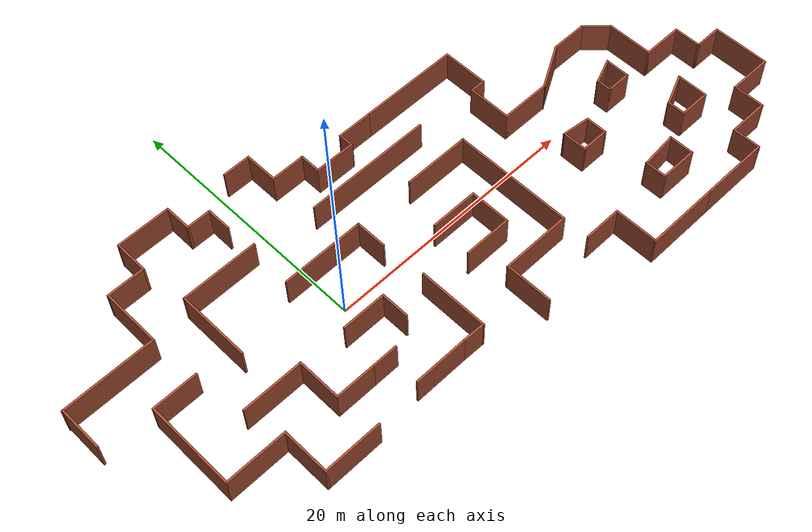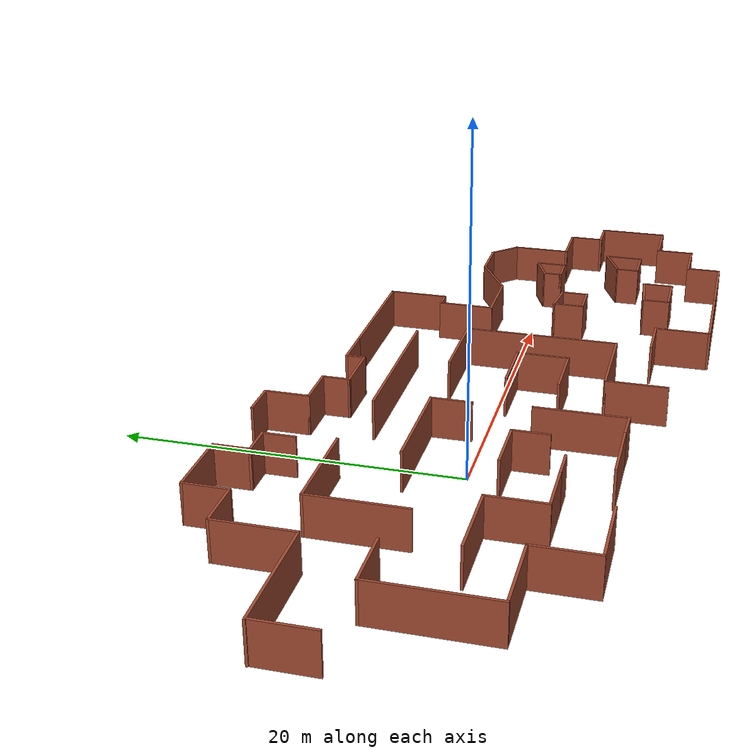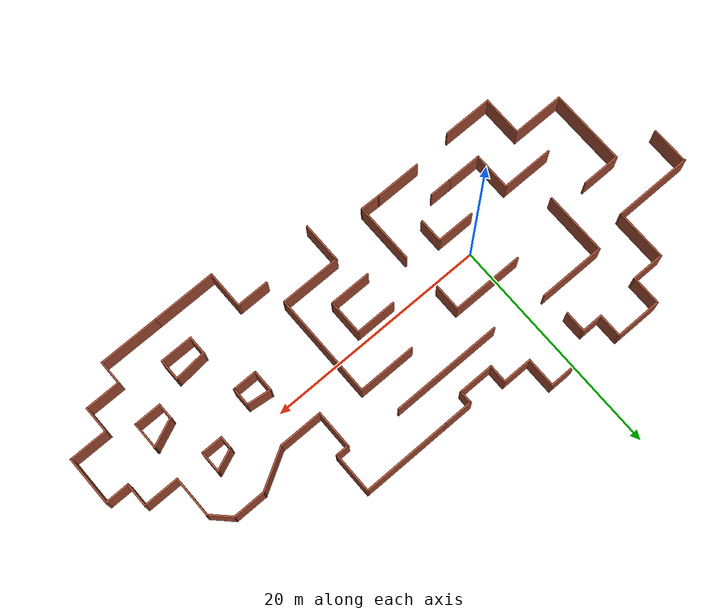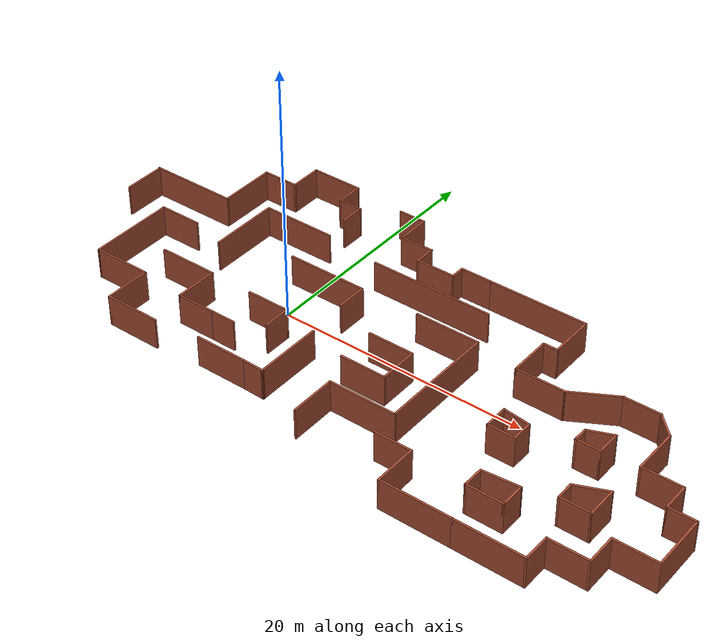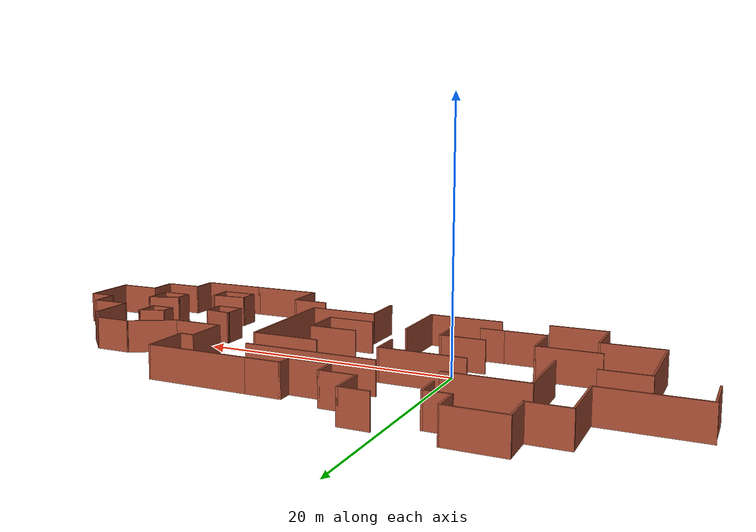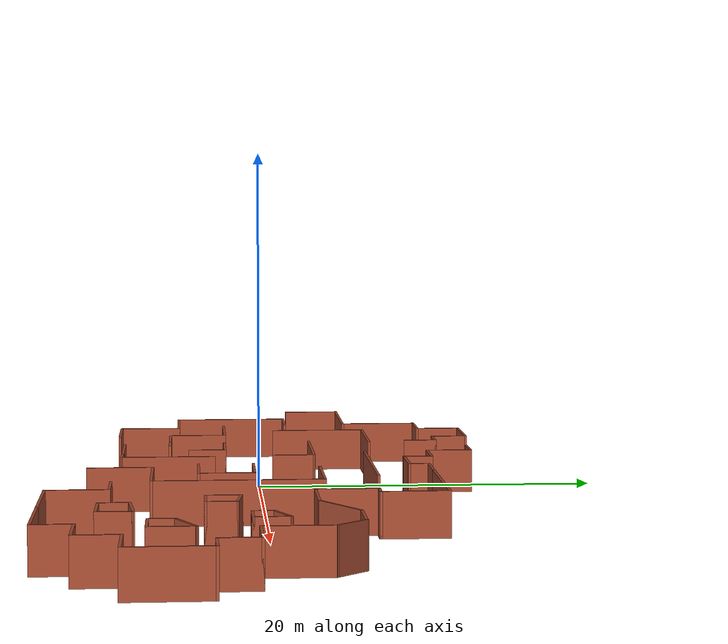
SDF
<?xml version='1.0'?>
<sdf version='1.6'>
  <model name='How_long_have_I_been_here'>
    <pose frame=''>8.36258 0.652337 0 0 -0 0</pose>
    <link name='Wall_0'>
      <collision name='Wall_0_Collision'>
        <geometry>
          <box>
            <size>3.5 0.15 2.5</size>
          </box>
        </geometry>
        <pose frame=''>0 0 1.25 0 -0 0</pose>
      </collision>
      <visual name='Wall_0_Visual'>
        <pose frame=''>0 0 1.25 0 -0 0</pose>
        <geometry>
          <box>
            <size>3.5 0.15 2.5</size>
          </box>
        </geometry>
        <material>
          <script>
            <uri>file://media/materials/scripts/gazebo.material</uri>
            <name>Gazebo/Bricks</name>
          </script>
          <ambient>1 1 1 1</ambient>
        </material>
        <meta>
          <layer>0</layer>
        </meta>
      </visual>
      <pose frame=''>-8.40758 -2.69234 0 0 -0 0</pose>
    </link>
    <link name='Wall_1'>
      <collision name='Wall_1_Collision'>
        <geometry>
          <box>
            <size>2.25 0.15 2.5</size>
          </box>
        </geometry>
        <pose frame=''>0 0 1.25 0 -0 0</pose>
      </collision>
      <visual name='Wall_1_Visual'>
        <pose frame=''>0 0 1.25 0 -0 0</pose>
        <geometry>
          <box>
            <size>2.25 0.15 2.5</size>
          </box>
        </geometry>
        <material>
          <script>
            <uri>file://media/materials/scripts/gazebo.material</uri>
            <name>Gazebo/Bricks</name>
          </script>
          <ambient>1 1 1 1</ambient>
        </material>
        <meta>
          <layer>0</layer>
        </meta>
      </visual>
      <pose frame=''>-6.73258 -3.74234 0 0 -0 -1.5708</pose>
    </link>
    <link name='Wall_10'>
      <collision name='Wall_10_Collision'>
        <geometry>
          <box>
            <size>5.75 0.15 2.5</size>
          </box>
        </geometry>
        <pose frame=''>0 0 1.25 0 -0 0</pose>
      </collision>
      <visual name='Wall_10_Visual'>
        <pose frame=''>0 0 1.25 0 -0 0</pose>
        <geometry>
          <box>
            <size>5.75 0.15 2.5</size>
          </box>
        </geometry>
        <material>
          <script>
            <uri>file://media/materials/scripts/gazebo.material</uri>
            <name>Gazebo/Bricks</name>
          </script>
          <ambient>1 1 1 1</ambient>
        </material>
        <meta>
          <layer>0</layer>
        </meta>
      </visual>
      <pose frame=''>-15.8552 3.3166 0 0 -0 -1.5708</pose>
    </link>
    <link name='Wall_12'>
      <collision name='Wall_12_Collision'>
        <geometry>
          <box>
            <size>10 0.15 2.5</size>
          </box>
        </geometry>
        <pose frame=''>0 0 1.25 0 -0 0</pose>
      </collision>
      <visual name='Wall_12_Visual'>
        <pose frame=''>0 0 1.25 0 -0 0</pose>
        <geometry>
          <box>
            <size>10 0.15 2.5</size>
          </box>
        </geometry>
        <material>
          <script>
            <uri>file://media/materials/scripts/gazebo.material</uri>
            <name>Gazebo/Bricks</name>
          </script>
          <ambient>1 1 1 1</ambient>
        </material>
        <meta>
          <layer>0</layer>
        </meta>
      </visual>
      <pose frame=''>-0.28468 5.49827 0 0 -0 0</pose>
    </link>
    <link name='Wall_15'>
      <collision name='Wall_15_Collision'>
        <geometry>
          <box>
            <size>4.75 0.15 2.5</size>
          </box>
        </geometry>
        <pose frame=''>0 0 1.25 0 -0 0</pose>
      </collision>
      <visual name='Wall_15_Visual'>
        <pose frame=''>0 0 1.25 0 -0 0</pose>
        <geometry>
          <box>
            <size>4.75 0.15 2.5</size>
          </box>
        </geometry>
        <material>
          <script>
            <uri>file://media/materials/scripts/gazebo.material</uri>
            <name>Gazebo/Bricks</name>
          </script>
          <ambient>1 1 1 1</ambient>
        </material>
        <meta>
          <layer>0</layer>
        </meta>
      </visual>
      <pose frame=''>-16.0459 -2.61972 0 0 -0 0</pose>
    </link>
    <link name='Wall_16'>
      <collision name='Wall_16_Collision'>
        <geometry>
          <box>
            <size>3.5 0.15 2.5</size>
          </box>
        </geometry>
        <pose frame=''>0 0 1.25 0 -0 0</pose>
      </collision>
      <visual name='Wall_16_Visual'>
        <pose frame=''>0 0 1.25 0 -0 0</pose>
        <geometry>
          <box>
            <size>3.5 0.15 2.5</size>
          </box>
        </geometry>
        <material>
          <script>
            <uri>file://media/materials/scripts/gazebo.material</uri>
            <name>Gazebo/Bricks</name>
          </script>
          <ambient>1 1 1 1</ambient>
        </material>
        <meta>
          <layer>0</layer>
        </meta>
      </visual>
      <pose frame=''>-13.7459 -4.29472 0 0 -0 -1.5708</pose>
    </link>
    <link name='Wall_17'>
      <collision name='Wall_17_Collision'>
        <geometry>
          <box>
            <size>3.25 0.15 2.5</size>
          </box>
        </geometry>
        <pose frame=''>0 0 1.25 0 -0 0</pose>
      </collision>
      <visual name='Wall_17_Visual'>
        <pose frame=''>0 0 1.25 0 -0 0</pose>
        <geometry>
          <box>
            <size>3.25 0.15 2.5</size>
          </box>
        </geometry>
        <material>
          <script>
            <uri>file://media/materials/scripts/gazebo.material</uri>
            <name>Gazebo/Bricks</name>
          </script>
          <ambient>1 1 1 1</ambient>
        </material>
        <meta>
          <layer>0</layer>
        </meta>
      </visual>
      <pose frame=''>-12.1959 -5.96972 0 0 -0 0</pose>
    </link>
    <link name='Wall_18'>
      <collision name='Wall_18_Collision'>
        <geometry>
          <box>
            <size>2 0.15 2.5</size>
          </box>
        </geometry>
        <pose frame=''>0 0 1.25 0 -0 0</pose>
      </collision>
      <visual name='Wall_18_Visual'>
        <pose frame=''>0 0 1.25 0 -0 0</pose>
        <geometry>
          <box>
            <size>2 0.15 2.5</size>
          </box>
        </geometry>
        <material>
          <script>
            <uri>file://media/materials/scripts/gazebo.material</uri>
            <name>Gazebo/Bricks</name>
          </script>
          <ambient>1 1 1 1</ambient>
        </material>
        <meta>
          <layer>0</layer>
        </meta>
      </visual>
      <pose frame=''>-9.72091 -5.96972 0 0 -0 0</pose>
    </link>
    <link name='Wall_20'>
      <collision name='Wall_20_Collision'>
        <geometry>
          <box>
            <size>4.25 0.15 2.5</size>
          </box>
        </geometry>
        <pose frame=''>0 0 1.25 0 -0 0</pose>
      </collision>
      <visual name='Wall_20_Visual'>
        <pose frame=''>0 0 1.25 0 -0 0</pose>
        <geometry>
          <box>
            <size>4.25 0.15 2.5</size>
          </box>
        </geometry>
        <material>
          <script>
            <uri>file://media/materials/scripts/gazebo.material</uri>
            <name>Gazebo/Bricks</name>
          </script>
          <ambient>1 1 1 1</ambient>
        </material>
        <meta>
          <layer>0</layer>
        </meta>
      </visual>
      <pose frame=''>-7.48592 -8.67658 0 0 -0 0</pose>
    </link>
    <link name='Wall_22'>
      <collision name='Wall_22_Collision'>
        <geometry>
          <box>
            <size>5.5 0.15 2.5</size>
          </box>
        </geometry>
        <pose frame=''>0 0 1.25 0 -0 0</pose>
      </collision>
      <visual name='Wall_22_Visual'>
        <pose frame=''>0 0 1.25 0 -0 0</pose>
        <geometry>
          <box>
            <size>5.5 0.15 2.5</size>
          </box>
        </geometry>
        <material>
          <script>
            <uri>file://media/materials/scripts/gazebo.material</uri>
            <name>Gazebo/Bricks</name>
          </script>
          <ambient>1 1 1 1</ambient>
        </material>
        <meta>
          <layer>0</layer>
        </meta>
      </visual>
      <pose frame=''>-3.78353 -6.04521 0 0 -0 -1.5708</pose>
    </link>
    <link name='Wall_23'>
      <collision name='Wall_23_Collision'>
        <geometry>
          <box>
            <size>1.80296 0.15 2.5</size>
          </box>
        </geometry>
        <pose frame=''>0 0 1.25 0 -0 0</pose>
      </collision>
      <visual name='Wall_23_Visual'>
        <pose frame=''>0 0 1.25 0 -0 0</pose>
        <geometry>
          <box>
            <size>1.80296 0.15 2.5</size>
          </box>
        </geometry>
        <material>
          <script>
            <uri>file://media/materials/scripts/gazebo.material</uri>
            <name>Gazebo/Bricks</name>
          </script>
          <ambient>1 1 1 1</ambient>
        </material>
        <meta>
          <layer>0</layer>
        </meta>
      </visual>
      <pose frame=''>-4.60973 -8.6984 0 0 -0 3.1152</pose>
    </link>
    <link name='Wall_26'>
      <collision name='Wall_26_Collision'>
        <geometry>
          <box>
            <size>3.75 0.15 2.5</size>
          </box>
        </geometry>
        <pose frame=''>0 0 1.25 0 -0 0</pose>
      </collision>
      <visual name='Wall_26_Visual'>
        <pose frame=''>0 0 1.25 0 -0 0</pose>
        <geometry>
          <box>
            <size>3.75 0.15 2.5</size>
          </box>
        </geometry>
        <material>
          <script>
            <uri>file://media/materials/scripts/gazebo.material</uri>
            <name>Gazebo/Bricks</name>
          </script>
          <ambient>1 1 1 1</ambient>
        </material>
        <meta>
          <layer>0</layer>
        </meta>
      </visual>
      <pose frame=''>1.25475 -1.19593 0 0 -0 0</pose>
    </link>
    <link name='Wall_27'>
      <collision name='Wall_27_Collision'>
        <geometry>
          <box>
            <size>3.25 0.15 2.5</size>
          </box>
        </geometry>
        <pose frame=''>0 0 1.25 0 -0 0</pose>
      </collision>
      <visual name='Wall_27_Visual'>
        <pose frame=''>0 0 1.25 0 -0 0</pose>
        <geometry>
          <box>
            <size>3.25 0.15 2.5</size>
          </box>
        </geometry>
        <material>
          <script>
            <uri>file://media/materials/scripts/gazebo.material</uri>
            <name>Gazebo/Bricks</name>
          </script>
          <ambient>1 1 1 1</ambient>
        </material>
        <meta>
          <layer>0</layer>
        </meta>
      </visual>
      <pose frame=''>3.05475 -2.74593 0 0 -0 -1.5708</pose>
    </link>
    <link name='Wall_28'>
      <collision name='Wall_28_Collision'>
        <geometry>
          <box>
            <size>3.75 0.15 2.5</size>
          </box>
        </geometry>
        <pose frame=''>0 0 1.25 0 -0 0</pose>
      </collision>
      <visual name='Wall_28_Visual'>
        <pose frame=''>0 0 1.25 0 -0 0</pose>
        <geometry>
          <box>
            <size>3.75 0.15 2.5</size>
          </box>
        </geometry>
        <material>
          <script>
            <uri>file://media/materials/scripts/gazebo.material</uri>
            <name>Gazebo/Bricks</name>
          </script>
          <ambient>1 1 1 1</ambient>
        </material>
        <meta>
          <layer>0</layer>
        </meta>
      </visual>
      <pose frame=''>1.25475 -4.29593 0 0 -0 3.14159</pose>
    </link>
    <link name='Wall_30'>
      <collision name='Wall_30_Collision'>
        <geometry>
          <box>
            <size>5.25 0.15 2.5</size>
          </box>
        </geometry>
        <pose frame=''>0 0 1.25 0 -0 0</pose>
      </collision>
      <visual name='Wall_30_Visual'>
        <pose frame=''>0 0 1.25 0 -0 0</pose>
        <geometry>
          <box>
            <size>5.25 0.15 2.5</size>
          </box>
        </geometry>
        <material>
          <script>
            <uri>file://media/materials/scripts/gazebo.material</uri>
            <name>Gazebo/Bricks</name>
          </script>
          <ambient>1 1 1 1</ambient>
        </material>
        <meta>
          <layer>0</layer>
        </meta>
      </visual>
      <pose frame=''>3.30007 2.50496 0 0 -0 0</pose>
    </link>
    <link name='Wall_31'>
      <collision name='Wall_31_Collision'>
        <geometry>
          <box>
            <size>9.5 0.15 2.5</size>
          </box>
        </geometry>
        <pose frame=''>0 0 1.25 0 -0 0</pose>
      </collision>
      <visual name='Wall_31_Visual'>
        <pose frame=''>0 0 1.25 0 -0 0</pose>
        <geometry>
          <box>
            <size>9.5 0.15 2.5</size>
          </box>
        </geometry>
        <material>
          <script>
            <uri>file://media/materials/scripts/gazebo.material</uri>
            <name>Gazebo/Bricks</name>
          </script>
          <ambient>1 1 1 1</ambient>
        </material>
        <meta>
          <layer>0</layer>
        </meta>
      </visual>
      <pose frame=''>5.85007 -2.17004 0 0 -0 -1.5708</pose>
    </link>
    <link name='Wall_32'>
      <collision name='Wall_32_Collision'>
        <geometry>
          <box>
            <size>5.5 0.15 2.5</size>
          </box>
        </geometry>
        <pose frame=''>0 0 1.25 0 -0 0</pose>
      </collision>
      <visual name='Wall_32_Visual'>
        <pose frame=''>0 0 1.25 0 -0 0</pose>
        <geometry>
          <box>
            <size>5.5 0.15 2.5</size>
          </box>
        </geometry>
        <material>
          <script>
            <uri>file://media/materials/scripts/gazebo.material</uri>
            <name>Gazebo/Bricks</name>
          </script>
          <ambient>1 1 1 1</ambient>
        </material>
        <meta>
          <layer>0</layer>
        </meta>
      </visual>
      <pose frame=''>3.17507 -6.84504 0 0 -0 3.14159</pose>
    </link>
    <link name='Wall_33'>
      <collision name='Wall_33_Collision'>
        <geometry>
          <box>
            <size>3.75 0.15 2.5</size>
          </box>
        </geometry>
        <pose frame=''>0 0 1.25 0 -0 0</pose>
      </collision>
      <visual name='Wall_33_Visual'>
        <pose frame=''>0 0 1.25 0 -0 0</pose>
        <geometry>
          <box>
            <size>3.75 0.15 2.5</size>
          </box>
        </geometry>
        <material>
          <script>
            <uri>file://media/materials/scripts/gazebo.material</uri>
            <name>Gazebo/Bricks</name>
          </script>
          <ambient>1 1 1 1</ambient>
        </material>
        <meta>
          <layer>0</layer>
        </meta>
      </visual>
      <pose frame=''>0.500066 -8.64504 0 0 -0 -1.5708</pose>
    </link>
    <link name='Wall_35'>
      <collision name='Wall_35_Collision'>
        <geometry>
          <box>
            <size>3.5 0.15 2.5</size>
          </box>
        </geometry>
        <pose frame=''>0 0 1.25 0 -0 0</pose>
      </collision>
      <visual name='Wall_35_Visual'>
        <pose frame=''>0 0 1.25 0 -0 0</pose>
        <geometry>
          <box>
            <size>3.5 0.15 2.5</size>
          </box>
        </geometry>
        <material>
          <script>
            <uri>file://media/materials/scripts/gazebo.material</uri>
            <name>Gazebo/Bricks</name>
          </script>
          <ambient>1 1 1 1</ambient>
        </material>
        <meta>
          <layer>0</layer>
        </meta>
      </visual>
      <pose frame=''>-20.4934 1.34843 0 0 -0 3.14159</pose>
    </link>
    <link name='Wall_36'>
      <collision name='Wall_36_Collision'>
        <geometry>
          <box>
            <size>7 0.15 2.5</size>
          </box>
        </geometry>
        <pose frame=''>0 0 1.25 0 -0 0</pose>
      </collision>
      <visual name='Wall_36_Visual'>
        <pose frame=''>0 0 1.25 0 -0 0</pose>
        <geometry>
          <box>
            <size>7 0.15 2.5</size>
          </box>
        </geometry>
        <material>
          <script>
            <uri>file://media/materials/scripts/gazebo.material</uri>
            <name>Gazebo/Bricks</name>
          </script>
          <ambient>1 1 1 1</ambient>
        </material>
        <meta>
          <layer>0</layer>
        </meta>
      </visual>
      <pose frame=''>-22.1684 -2.07657 0 0 -0 -1.5708</pose>
    </link>
    <link name='Wall_37'>
      <collision name='Wall_37_Collision'>
        <geometry>
          <box>
            <size>4.75 0.15 2.5</size>
          </box>
        </geometry>
        <pose frame=''>0 0 1.25 0 -0 0</pose>
      </collision>
      <visual name='Wall_37_Visual'>
        <pose frame=''>0 0 1.25 0 -0 0</pose>
        <geometry>
          <box>
            <size>4.75 0.15 2.5</size>
          </box>
        </geometry>
        <material>
          <script>
            <uri>file://media/materials/scripts/gazebo.material</uri>
            <name>Gazebo/Bricks</name>
          </script>
          <ambient>1 1 1 1</ambient>
        </material>
        <meta>
          <layer>0</layer>
        </meta>
      </visual>
      <pose frame=''>-19.8684 -5.50157 0 0 -0 0</pose>
    </link>
    <link name='Wall_38'>
      <collision name='Wall_38_Collision'>
        <geometry>
          <box>
            <size>3.75 0.15 2.5</size>
          </box>
        </geometry>
        <pose frame=''>0 0 1.25 0 -0 0</pose>
      </collision>
      <visual name='Wall_38_Visual'>
        <pose frame=''>0 0 1.25 0 -0 0</pose>
        <geometry>
          <box>
            <size>3.75 0.15 2.5</size>
          </box>
        </geometry>
        <material>
          <script>
            <uri>file://media/materials/scripts/gazebo.material</uri>
            <name>Gazebo/Bricks</name>
          </script>
          <ambient>1 1 1 1</ambient>
        </material>
        <meta>
          <layer>0</layer>
        </meta>
      </visual>
      <pose frame=''>-17.5684 -7.30157 0 0 -0 -1.5708</pose>
    </link>
    <link name='Wall_39'>
      <collision name='Wall_39_Collision'>
        <geometry>
          <box>
            <size>4.5 0.15 2.5</size>
          </box>
        </geometry>
        <pose frame=''>0 0 1.25 0 -0 0</pose>
      </collision>
      <visual name='Wall_39_Visual'>
        <pose frame=''>0 0 1.25 0 -0 0</pose>
        <geometry>
          <box>
            <size>4.5 0.15 2.5</size>
          </box>
        </geometry>
        <material>
          <script>
            <uri>file://media/materials/scripts/gazebo.material</uri>
            <name>Gazebo/Bricks</name>
          </script>
          <ambient>1 1 1 1</ambient>
        </material>
        <meta>
          <layer>0</layer>
        </meta>
      </visual>
      <pose frame=''>-15.3934 -9.10157 0 0 -0 0</pose>
    </link>
    <link name='Wall_41'>
      <collision name='Wall_41_Collision'>
        <geometry>
          <box>
            <size>2 0.15 2.5</size>
          </box>
        </geometry>
        <pose frame=''>0 0 1.25 0 -0 0</pose>
      </collision>
      <visual name='Wall_41_Visual'>
        <pose frame=''>0 0 1.25 0 -0 0</pose>
        <geometry>
          <box>
            <size>2 0.15 2.5</size>
          </box>
        </geometry>
        <material>
          <script>
            <uri>file://media/materials/scripts/gazebo.material</uri>
            <name>Gazebo/Bricks</name>
          </script>
          <ambient>1 1 1 1</ambient>
        </material>
        <meta>
          <layer>0</layer>
        </meta>
      </visual>
      <pose frame=''>-10.3555 9.30042 0 0 -0 1.5708</pose>
    </link>
    <link name='Wall_42'>
      <collision name='Wall_42_Collision'>
        <geometry>
          <box>
            <size>2 0.15 2.5</size>
          </box>
        </geometry>
        <pose frame=''>0 0 1.25 0 -0 0</pose>
      </collision>
      <visual name='Wall_42_Visual'>
        <pose frame=''>0 0 1.25 0 -0 0</pose>
        <geometry>
          <box>
            <size>2 0.15 2.5</size>
          </box>
        </geometry>
        <material>
          <script>
            <uri>file://media/materials/scripts/gazebo.material</uri>
            <name>Gazebo/Bricks</name>
          </script>
          <ambient>1 1 1 1</ambient>
        </material>
        <meta>
          <layer>0</layer>
        </meta>
      </visual>
      <pose frame=''>-11.2805 10.2254 0 0 -0 3.14159</pose>
    </link>
    <link name='Wall_43'>
      <collision name='Wall_43_Collision'>
        <geometry>
          <box>
            <size>2.25 0.15 2.5</size>
          </box>
        </geometry>
        <pose frame=''>0 0 1.25 0 -0 0</pose>
      </collision>
      <visual name='Wall_43_Visual'>
        <pose frame=''>0 0 1.25 0 -0 0</pose>
        <geometry>
          <box>
            <size>2.25 0.15 2.5</size>
          </box>
        </geometry>
        <material>
          <script>
            <uri>file://media/materials/scripts/gazebo.material</uri>
            <name>Gazebo/Bricks</name>
          </script>
          <ambient>1 1 1 1</ambient>
        </material>
        <meta>
          <layer>0</layer>
        </meta>
      </visual>
      <pose frame=''>-12.2055 11.2754 0 0 -0 1.5708</pose>
    </link>
    <link name='Wall_44'>
      <collision name='Wall_44_Collision'>
        <geometry>
          <box>
            <size>4.25 0.15 2.5</size>
          </box>
        </geometry>
        <pose frame=''>0 0 1.25 0 -0 0</pose>
      </collision>
      <visual name='Wall_44_Visual'>
        <pose frame=''>0 0 1.25 0 -0 0</pose>
        <geometry>
          <box>
            <size>4.25 0.15 2.5</size>
          </box>
        </geometry>
        <material>
          <script>
            <uri>file://media/materials/scripts/gazebo.material</uri>
            <name>Gazebo/Bricks</name>
          </script>
          <ambient>1 1 1 1</ambient>
        </material>
        <meta>
          <layer>0</layer>
        </meta>
      </visual>
      <pose frame=''>-14.2555 12.3254 0 0 -0 3.14159</pose>
    </link>
    <link name='Wall_45'>
      <collision name='Wall_45_Collision'>
        <geometry>
          <box>
            <size>2.75 0.15 2.5</size>
          </box>
        </geometry>
        <pose frame=''>0 0 1.25 0 -0 0</pose>
      </collision>
      <visual name='Wall_45_Visual'>
        <pose frame=''>0 0 1.25 0 -0 0</pose>
        <geometry>
          <box>
            <size>2.75 0.15 2.5</size>
          </box>
        </geometry>
        <material>
          <script>
            <uri>file://media/materials/scripts/gazebo.material</uri>
            <name>Gazebo/Bricks</name>
          </script>
          <ambient>1 1 1 1</ambient>
        </material>
        <meta>
          <layer>0</layer>
        </meta>
      </visual>
      <pose frame=''>-16.3055 11.0254 0 0 -0 -1.5708</pose>
    </link>
    <link name='Wall_46'>
      <collision name='Wall_46_Collision'>
        <geometry>
          <box>
            <size>3 0.15 2.5</size>
          </box>
        </geometry>
        <pose frame=''>0 0 1.25 0 -0 0</pose>
      </collision>
      <visual name='Wall_46_Visual'>
        <pose frame=''>0 0 1.25 0 -0 0</pose>
        <geometry>
          <box>
            <size>3 0.15 2.5</size>
          </box>
        </geometry>
        <material>
          <script>
            <uri>file://media/materials/scripts/gazebo.material</uri>
            <name>Gazebo/Bricks</name>
          </script>
          <ambient>1 1 1 1</ambient>
        </material>
        <meta>
          <layer>0</layer>
        </meta>
      </visual>
      <pose frame=''>-17.7305 9.72542 0 0 -0 3.14159</pose>
    </link>
    <link name='Wall_47'>
      <collision name='Wall_47_Collision'>
        <geometry>
          <box>
            <size>4.75 0.15 2.5</size>
          </box>
        </geometry>
        <pose frame=''>0 0 1.25 0 -0 0</pose>
      </collision>
      <visual name='Wall_47_Visual'>
        <pose frame=''>0 0 1.25 0 -0 0</pose>
        <geometry>
          <box>
            <size>4.75 0.15 2.5</size>
          </box>
        </geometry>
        <material>
          <script>
            <uri>file://media/materials/scripts/gazebo.material</uri>
            <name>Gazebo/Bricks</name>
          </script>
          <ambient>1 1 1 1</ambient>
        </material>
        <meta>
          <layer>0</layer>
        </meta>
      </visual>
      <pose frame=''>-19.1555 7.42542 0 0 -0 -1.5708</pose>
    </link>
    <link name='Wall_48'>
      <collision name='Wall_48_Collision'>
        <geometry>
          <box>
            <size>7.16521 0.15 2.5</size>
          </box>
        </geometry>
        <pose frame=''>0 0 1.25 0 -0 0</pose>
      </collision>
      <visual name='Wall_48_Visual'>
        <pose frame=''>0 0 1.25 0 -0 0</pose>
        <geometry>
          <box>
            <size>7.16521 0.15 2.5</size>
          </box>
        </geometry>
        <material>
          <script>
            <uri>file://media/materials/scripts/gazebo.material</uri>
            <name>Gazebo/Bricks</name>
          </script>
          <ambient>1 1 1 1</ambient>
        </material>
        <meta>
          <layer>0</layer>
        </meta>
      </visual>
      <pose frame=''>-22.6631 5.12542 0 0 -0 3.14159</pose>
    </link>
    <link name='Wall_49'>
      <collision name='Wall_49_Collision'>
        <geometry>
          <box>
            <size>3.5 0.15 2.5</size>
          </box>
        </geometry>
        <pose frame=''>0 0 1.25 0 -0 0</pose>
      </collision>
      <visual name='Wall_49_Visual'>
        <pose frame=''>0 0 1.25 0 -0 0</pose>
        <geometry>
          <box>
            <size>3.5 0.15 2.5</size>
          </box>
        </geometry>
        <material>
          <script>
            <uri>file://media/materials/scripts/gazebo.material</uri>
            <name>Gazebo/Bricks</name>
          </script>
          <ambient>1 1 1 1</ambient>
        </material>
        <meta>
          <layer>0</layer>
        </meta>
      </visual>
      <pose frame=''>-26.1175 3.45042 0 0 -0 -1.5708</pose>
    </link>
    <link name='Wall_51'>
      <collision name='Wall_51_Collision'>
        <geometry>
          <box>
            <size>2.25 0.15 2.5</size>
          </box>
        </geometry>
        <pose frame=''>0 0 1.25 0 -0 0</pose>
      </collision>
      <visual name='Wall_51_Visual'>
        <pose frame=''>0 0 1.25 0 -0 0</pose>
        <geometry>
          <box>
            <size>2.25 0.15 2.5</size>
          </box>
        </geometry>
        <material>
          <script>
            <uri>file://media/materials/scripts/gazebo.material</uri>
            <name>Gazebo/Bricks</name>
          </script>
          <ambient>1 1 1 1</ambient>
        </material>
        <meta>
          <layer>0</layer>
        </meta>
      </visual>
      <pose frame=''>-6.62692 11.8209 0 0 -0 0</pose>
    </link>
    <link name='Wall_52'>
      <collision name='Wall_52_Collision'>
        <geometry>
          <box>
            <size>2.75 0.15 2.5</size>
          </box>
        </geometry>
        <pose frame=''>0 0 1.25 0 -0 0</pose>
      </collision>
      <visual name='Wall_52_Visual'>
        <pose frame=''>0 0 1.25 0 -0 0</pose>
        <geometry>
          <box>
            <size>2.75 0.15 2.5</size>
          </box>
        </geometry>
        <material>
          <script>
            <uri>file://media/materials/scripts/gazebo.material</uri>
            <name>Gazebo/Bricks</name>
          </script>
          <ambient>1 1 1 1</ambient>
        </material>
        <meta>
          <layer>0</layer>
        </meta>
      </visual>
      <pose frame=''>-5.57692 10.5209 0 0 -0 -1.5708</pose>
    </link>
    <link name='Wall_53'>
      <collision name='Wall_53_Collision'>
        <geometry>
          <box>
            <size>2.75 0.15 2.5</size>
          </box>
        </geometry>
        <pose frame=''>0 0 1.25 0 -0 0</pose>
      </collision>
      <visual name='Wall_53_Visual'>
        <pose frame=''>0 0 1.25 0 -0 0</pose>
        <geometry>
          <box>
            <size>2.75 0.15 2.5</size>
          </box>
        </geometry>
        <material>
          <script>
            <uri>file://media/materials/scripts/gazebo.material</uri>
            <name>Gazebo/Bricks</name>
          </script>
          <ambient>1 1 1 1</ambient>
        </material>
        <meta>
          <layer>0</layer>
        </meta>
      </visual>
      <pose frame=''>-4.27692 9.22086 0 0 -0 0</pose>
    </link>
    <link name='Wall_54'>
      <collision name='Wall_54_Collision'>
        <geometry>
          <box>
            <size>1.75 0.15 2.5</size>
          </box>
        </geometry>
        <pose frame=''>0 0 1.25 0 -0 0</pose>
      </collision>
      <visual name='Wall_54_Visual'>
        <pose frame=''>0 0 1.25 0 -0 0</pose>
        <geometry>
          <box>
            <size>1.75 0.15 2.5</size>
          </box>
        </geometry>
        <material>
          <script>
            <uri>file://media/materials/scripts/gazebo.material</uri>
            <name>Gazebo/Bricks</name>
          </script>
          <ambient>1 1 1 1</ambient>
        </material>
        <meta>
          <layer>0</layer>
        </meta>
      </visual>
      <pose frame=''>-2.97692 8.42086 0 0 -0 -1.5708</pose>
    </link>
    <link name='Wall_55'>
      <collision name='Wall_55_Collision'>
        <geometry>
          <box>
            <size>3.25 0.15 2.5</size>
          </box>
        </geometry>
        <pose frame=''>0 0 1.25 0 -0 0</pose>
      </collision>
      <visual name='Wall_55_Visual'>
        <pose frame=''>0 0 1.25 0 -0 0</pose>
        <geometry>
          <box>
            <size>3.25 0.15 2.5</size>
          </box>
        </geometry>
        <material>
          <script>
            <uri>file://media/materials/scripts/gazebo.material</uri>
            <name>Gazebo/Bricks</name>
          </script>
          <ambient>1 1 1 1</ambient>
        </material>
        <meta>
          <layer>0</layer>
        </meta>
      </visual>
      <pose frame=''>-1.42692 7.62086 0 0 -0 0</pose>
    </link>
    <link name='Wall_56'>
      <collision name='Wall_56_Collision'>
        <geometry>
          <box>
            <size>1.25 0.15 2.5</size>
          </box>
        </geometry>
        <pose frame=''>0 0 1.25 0 -0 0</pose>
      </collision>
      <visual name='Wall_56_Visual'>
        <pose frame=''>0 0 1.25 0 -0 0</pose>
        <geometry>
          <box>
            <size>1.25 0.15 2.5</size>
          </box>
        </geometry>
        <material>
          <script>
            <uri>file://media/materials/scripts/gazebo.material</uri>
            <name>Gazebo/Bricks</name>
          </script>
          <ambient>1 1 1 1</ambient>
        </material>
        <meta>
          <layer>0</layer>
        </meta>
      </visual>
      <pose frame=''>0.12308 8.17086 0 0 -0 1.5708</pose>
    </link>
    <link name='Wall_57'>
      <collision name='Wall_57_Collision'>
        <geometry>
          <box>
            <size>2.75 0.15 2.5</size>
          </box>
        </geometry>
        <pose frame=''>0 0 1.25 0 -0 0</pose>
      </collision>
      <visual name='Wall_57_Visual'>
        <pose frame=''>0 0 1.25 0 -0 0</pose>
        <geometry>
          <box>
            <size>2.75 0.15 2.5</size>
          </box>
        </geometry>
        <material>
          <script>
            <uri>file://media/materials/scripts/gazebo.material</uri>
            <name>Gazebo/Bricks</name>
          </script>
          <ambient>1 1 1 1</ambient>
        </material>
        <meta>
          <layer>0</layer>
        </meta>
      </visual>
      <pose frame=''>1.42308 8.72086 0 0 -0 0</pose>
    </link>
    <link name='Wall_58'>
      <collision name='Wall_58_Collision'>
        <geometry>
          <box>
            <size>8 0.15 2.5</size>
          </box>
        </geometry>
        <pose frame=''>0 0 1.25 0 -0 0</pose>
      </collision>
      <visual name='Wall_58_Visual'>
        <pose frame=''>0 0 1.25 0 -0 0</pose>
        <geometry>
          <box>
            <size>8 0.15 2.5</size>
          </box>
        </geometry>
        <material>
          <script>
            <uri>file://media/materials/scripts/gazebo.material</uri>
            <name>Gazebo/Bricks</name>
          </script>
          <ambient>1 1 1 1</ambient>
        </material>
        <meta>
          <layer>0</layer>
        </meta>
      </visual>
      <pose frame=''>6.64808 8.72086 0 0 -0 0</pose>
    </link>
    <link name='Wall_59'>
      <collision name='Wall_59_Collision'>
        <geometry>
          <box>
            <size>3.75 0.15 2.5</size>
          </box>
        </geometry>
        <pose frame=''>0 0 1.25 0 -0 0</pose>
      </collision>
      <visual name='Wall_59_Visual'>
        <pose frame=''>0 0 1.25 0 -0 0</pose>
        <geometry>
          <box>
            <size>3.75 0.15 2.5</size>
          </box>
        </geometry>
        <material>
          <script>
            <uri>file://media/materials/scripts/gazebo.material</uri>
            <name>Gazebo/Bricks</name>
          </script>
          <ambient>1 1 1 1</ambient>
        </material>
        <meta>
          <layer>0</layer>
        </meta>
      </visual>
      <pose frame=''>10.5731 6.92086 0 0 -0 -1.5708</pose>
    </link>
    <link name='Wall_6'>
      <collision name='Wall_6_Collision'>
        <geometry>
          <box>
            <size>6.5 0.15 2.5</size>
          </box>
        </geometry>
        <pose frame=''>0 0 1.25 0 -0 0</pose>
      </collision>
      <visual name='Wall_6_Visual'>
        <pose frame=''>0 0 1.25 0 -0 0</pose>
        <geometry>
          <box>
            <size>6.5 0.15 2.5</size>
          </box>
        </geometry>
        <material>
          <script>
            <uri>file://media/materials/scripts/gazebo.material</uri>
            <name>Gazebo/Bricks</name>
          </script>
          <ambient>1 1 1 1</ambient>
        </material>
        <meta>
          <layer>0</layer>
        </meta>
      </visual>
      <pose frame=''>-7.24896 2.44491 0 0 -0 0</pose>
    </link>
    <link name='Wall_60'>
      <collision name='Wall_60_Collision'>
        <geometry>
          <box>
            <size>1.25 0.15 2.5</size>
          </box>
        </geometry>
        <pose frame=''>0 0 1.25 0 -0 0</pose>
      </collision>
      <visual name='Wall_60_Visual'>
        <pose frame=''>0 0 1.25 0 -0 0</pose>
        <geometry>
          <box>
            <size>1.25 0.15 2.5</size>
          </box>
        </geometry>
        <material>
          <script>
            <uri>file://media/materials/scripts/gazebo.material</uri>
            <name>Gazebo/Bricks</name>
          </script>
          <ambient>1 1 1 1</ambient>
        </material>
        <meta>
          <layer>0</layer>
        </meta>
      </visual>
      <pose frame=''>10.0231 5.12086 0 0 -0 3.14159</pose>
    </link>
    <link name='Wall_61'>
      <collision name='Wall_61_Collision'>
        <geometry>
          <box>
            <size>3.5 0.15 2.5</size>
          </box>
        </geometry>
        <pose frame=''>0 0 1.25 0 -0 0</pose>
      </collision>
      <visual name='Wall_61_Visual'>
        <pose frame=''>0 0 1.25 0 -0 0</pose>
        <geometry>
          <box>
            <size>3.5 0.15 2.5</size>
          </box>
        </geometry>
        <material>
          <script>
            <uri>file://media/materials/scripts/gazebo.material</uri>
            <name>Gazebo/Bricks</name>
          </script>
          <ambient>1 1 1 1</ambient>
        </material>
        <meta>
          <layer>0</layer>
        </meta>
      </visual>
      <pose frame=''>9.47308 3.44586 0 0 -0 -1.5708</pose>
    </link>
    <link name='Wall_62'>
      <collision name='Wall_62_Collision'>
        <geometry>
          <box>
            <size>4 0.15 2.5</size>
          </box>
        </geometry>
        <pose frame=''>0 0 1.25 0 -0 0</pose>
      </collision>
      <visual name='Wall_62_Visual'>
        <pose frame=''>0 0 1.25 0 -0 0</pose>
        <geometry>
          <box>
            <size>4 0.15 2.5</size>
          </box>
        </geometry>
        <material>
          <script>
            <uri>file://media/materials/scripts/gazebo.material</uri>
            <name>Gazebo/Bricks</name>
          </script>
          <ambient>1 1 1 1</ambient>
        </material>
        <meta>
          <layer>0</layer>
        </meta>
      </visual>
      <pose frame=''>11.3981 1.77086 0 0 -0 0</pose>
    </link>
    <link name='Wall_64'>
      <collision name='Wall_64_Collision'>
        <geometry>
          <box>
            <size>2 0.15 2.5</size>
          </box>
        </geometry>
        <pose frame=''>0 0 1.25 0 -0 0</pose>
      </collision>
      <visual name='Wall_64_Visual'>
        <pose frame=''>0 0 1.25 0 -0 0</pose>
        <geometry>
          <box>
            <size>2 0.15 2.5</size>
          </box>
        </geometry>
        <material>
          <script>
            <uri>file://media/materials/scripts/gazebo.material</uri>
            <name>Gazebo/Bricks</name>
          </script>
          <ambient>1 1 1 1</ambient>
        </material>
        <meta>
          <layer>0</layer>
        </meta>
      </visual>
      <pose frame=''>11.1667 -3.05328 0 0 -0 -1.5708</pose>
    </link>
    <link name='Wall_65'>
      <collision name='Wall_65_Collision'>
        <geometry>
          <box>
            <size>2.25 0.15 2.5</size>
          </box>
        </geometry>
        <pose frame=''>0 0 1.25 0 -0 0</pose>
      </collision>
      <visual name='Wall_65_Visual'>
        <pose frame=''>0 0 1.25 0 -0 0</pose>
        <geometry>
          <box>
            <size>2.25 0.15 2.5</size>
          </box>
        </geometry>
        <material>
          <script>
            <uri>file://media/materials/scripts/gazebo.material</uri>
            <name>Gazebo/Bricks</name>
          </script>
          <ambient>1 1 1 1</ambient>
        </material>
        <meta>
          <layer>0</layer>
        </meta>
      </visual>
      <pose frame=''>12.2167 -3.97828 0 0 -0 0</pose>
    </link>
    <link name='Wall_66'>
      <collision name='Wall_66_Collision'>
        <geometry>
          <box>
            <size>1.75 0.15 2.5</size>
          </box>
        </geometry>
        <pose frame=''>0 0 1.25 0 -0 0</pose>
      </collision>
      <visual name='Wall_66_Visual'>
        <pose frame=''>0 0 1.25 0 -0 0</pose>
        <geometry>
          <box>
            <size>1.75 0.15 2.5</size>
          </box>
        </geometry>
        <material>
          <script>
            <uri>file://media/materials/scripts/gazebo.material</uri>
            <name>Gazebo/Bricks</name>
          </script>
          <ambient>1 1 1 1</ambient>
        </material>
        <meta>
          <layer>0</layer>
        </meta>
      </visual>
      <pose frame=''>13.2667 -3.17828 0 0 -0 1.5708</pose>
    </link>
    <link name='Wall_67'>
      <collision name='Wall_67_Collision'>
        <geometry>
          <box>
            <size>2.26483 0.15 2.5</size>
          </box>
        </geometry>
        <pose frame=''>0 0 1.25 0 -0 0</pose>
      </collision>
      <visual name='Wall_67_Visual'>
        <pose frame=''>0 0 1.25 0 -0 0</pose>
        <geometry>
          <box>
            <size>2.26483 0.15 2.5</size>
          </box>
        </geometry>
        <material>
          <script>
            <uri>file://media/materials/scripts/gazebo.material</uri>
            <name>Gazebo/Bricks</name>
          </script>
          <ambient>1 1 1 1</ambient>
        </material>
        <meta>
          <layer>0</layer>
        </meta>
      </visual>
      <pose frame=''>12.2167 -2.25328 0 0 -0 3.0231</pose>
    </link>
    <link name='Wall_69'>
      <collision name='Wall_69_Collision'>
        <geometry>
          <box>
            <size>1.25 0.15 2.5</size>
          </box>
        </geometry>
        <pose frame=''>0 0 1.25 0 -0 0</pose>
      </collision>
      <visual name='Wall_69_Visual'>
        <pose frame=''>0 0 1.25 0 -0 0</pose>
        <geometry>
          <box>
            <size>1.25 0.15 2.5</size>
          </box>
        </geometry>
        <material>
          <script>
            <uri>file://media/materials/scripts/gazebo.material</uri>
            <name>Gazebo/Bricks</name>
          </script>
          <ambient>1 1 1 1</ambient>
        </material>
        <meta>
          <layer>0</layer>
        </meta>
      </visual>
      <pose frame=''>16.3895 -1.16741 0 0 -0 -1.5708</pose>
    </link>
    <link name='Wall_7'>
      <collision name='Wall_7_Collision'>
        <geometry>
          <box>
            <size>2.5 0.15 2.5</size>
          </box>
        </geometry>
        <pose frame=''>0 0 1.25 0 -0 0</pose>
      </collision>
      <visual name='Wall_7_Visual'>
        <pose frame=''>0 0 1.25 0 -0 0</pose>
        <geometry>
          <box>
            <size>2.5 0.15 2.5</size>
          </box>
        </geometry>
        <material>
          <script>
            <uri>file://media/materials/scripts/gazebo.material</uri>
            <name>Gazebo/Bricks</name>
          </script>
          <ambient>1 1 1 1</ambient>
        </material>
        <meta>
          <layer>0</layer>
        </meta>
      </visual>
      <pose frame=''>-4.07396 1.26991 0 0 -0 -1.5708</pose>
    </link>
    <link name='Wall_70'>
      <collision name='Wall_70_Collision'>
        <geometry>
          <box>
            <size>2 0.15 2.5</size>
          </box>
        </geometry>
        <pose frame=''>0 0 1.25 0 -0 0</pose>
      </collision>
      <visual name='Wall_70_Visual'>
        <pose frame=''>0 0 1.25 0 -0 0</pose>
        <geometry>
          <box>
            <size>2 0.15 2.5</size>
          </box>
        </geometry>
        <material>
          <script>
            <uri>file://media/materials/scripts/gazebo.material</uri>
            <name>Gazebo/Bricks</name>
          </script>
          <ambient>1 1 1 1</ambient>
        </material>
        <meta>
          <layer>0</layer>
        </meta>
      </visual>
      <pose frame=''>17.3145 -1.71741 0 0 -0 0</pose>
    </link>
    <link name='Wall_71'>
      <collision name='Wall_71_Collision'>
        <geometry>
          <box>
            <size>2 0.15 2.5</size>
          </box>
        </geometry>
        <pose frame=''>0 0 1.25 0 -0 0</pose>
      </collision>
      <visual name='Wall_71_Visual'>
        <pose frame=''>0 0 1.25 0 -0 0</pose>
        <geometry>
          <box>
            <size>2 0.15 2.5</size>
          </box>
        </geometry>
        <material>
          <script>
            <uri>file://media/materials/scripts/gazebo.material</uri>
            <name>Gazebo/Bricks</name>
          </script>
          <ambient>1 1 1 1</ambient>
        </material>
        <meta>
          <layer>0</layer>
        </meta>
      </visual>
      <pose frame=''>18.2395 -0.79241 0 0 -0 1.5708</pose>
    </link>
    <link name='Wall_72'>
      <collision name='Wall_72_Collision'>
        <geometry>
          <box>
            <size>2.14625 0.15 2.5</size>
          </box>
        </geometry>
        <pose frame=''>0 0 1.25 0 -0 0</pose>
      </collision>
      <visual name='Wall_72_Visual'>
        <pose frame=''>0 0 1.25 0 -0 0</pose>
        <geometry>
          <box>
            <size>2.14625 0.15 2.5</size>
          </box>
        </geometry>
        <material>
          <script>
            <uri>file://media/materials/scripts/gazebo.material</uri>
            <name>Gazebo/Bricks</name>
          </script>
          <ambient>1 1 1 1</ambient>
        </material>
        <meta>
          <layer>0</layer>
        </meta>
      </visual>
      <pose frame=''>17.3145 -0.24241 0 0 -0 -2.75644</pose>
    </link>
    <link name='Wall_74'>
      <collision name='Wall_74_Collision'>
        <geometry>
          <box>
            <size>1.5 0.15 2.5</size>
          </box>
        </geometry>
        <pose frame=''>0 0 1.25 0 -0 0</pose>
      </collision>
      <visual name='Wall_74_Visual'>
        <pose frame=''>0 0 1.25 0 -0 0</pose>
        <geometry>
          <box>
            <size>1.5 0.15 2.5</size>
          </box>
        </geometry>
        <material>
          <script>
            <uri>file://media/materials/scripts/gazebo.material</uri>
            <name>Gazebo/Bricks</name>
          </script>
          <ambient>1 1 1 1</ambient>
        </material>
        <meta>
          <layer>0</layer>
        </meta>
      </visual>
      <pose frame=''>18.4009 -6.11967 0 0 -0 -1.5708</pose>
    </link>
    <link name='Wall_75'>
      <collision name='Wall_75_Collision'>
        <geometry>
          <box>
            <size>2.5 0.15 2.5</size>
          </box>
        </geometry>
        <pose frame=''>0 0 1.25 0 -0 0</pose>
      </collision>
      <visual name='Wall_75_Visual'>
        <pose frame=''>0 0 1.25 0 -0 0</pose>
        <geometry>
          <box>
            <size>2.5 0.15 2.5</size>
          </box>
        </geometry>
        <material>
          <script>
            <uri>file://media/materials/scripts/gazebo.material</uri>
            <name>Gazebo/Bricks</name>
          </script>
          <ambient>1 1 1 1</ambient>
        </material>
        <meta>
          <layer>0</layer>
        </meta>
      </visual>
      <pose frame=''>19.5759 -6.79467 0 0 -0 0</pose>
    </link>
    <link name='Wall_76'>
      <collision name='Wall_76_Collision'>
        <geometry>
          <box>
            <size>2.5 0.15 2.5</size>
          </box>
        </geometry>
        <pose frame=''>0 0 1.25 0 -0 0</pose>
      </collision>
      <visual name='Wall_76_Visual'>
        <pose frame=''>0 0 1.25 0 -0 0</pose>
        <geometry>
          <box>
            <size>2.5 0.15 2.5</size>
          </box>
        </geometry>
        <material>
          <script>
            <uri>file://media/materials/scripts/gazebo.material</uri>
            <name>Gazebo/Bricks</name>
          </script>
          <ambient>1 1 1 1</ambient>
        </material>
        <meta>
          <layer>0</layer>
        </meta>
      </visual>
      <pose frame=''>20.7509 -5.61967 0 0 -0 1.5708</pose>
    </link>
    <link name='Wall_77'>
      <collision name='Wall_77_Collision'>
        <geometry>
          <box>
            <size>2.70392 0.15 2.5</size>
          </box>
        </geometry>
        <pose frame=''>0 0 1.25 0 -0 0</pose>
      </collision>
      <visual name='Wall_77_Visual'>
        <pose frame=''>0 0 1.25 0 -0 0</pose>
        <geometry>
          <box>
            <size>2.70392 0.15 2.5</size>
          </box>
        </geometry>
        <material>
          <script>
            <uri>file://media/materials/scripts/gazebo.material</uri>
            <name>Gazebo/Bricks</name>
          </script>
          <ambient>1 1 1 1</ambient>
        </material>
        <meta>
          <layer>0</layer>
        </meta>
      </visual>
      <pose frame=''>19.5759 -4.94467 0 0 -0 -2.73927</pose>
    </link>
    <link name='Wall_79'>
      <collision name='Wall_79_Collision'>
        <geometry>
          <box>
            <size>1.75 0.15 2.5</size>
          </box>
        </geometry>
        <pose frame=''>0 0 1.25 0 -0 0</pose>
      </collision>
      <visual name='Wall_79_Visual'>
        <pose frame=''>0 0 1.25 0 -0 0</pose>
        <geometry>
          <box>
            <size>1.75 0.15 2.5</size>
          </box>
        </geometry>
        <material>
          <script>
            <uri>file://media/materials/scripts/gazebo.material</uri>
            <name>Gazebo/Bricks</name>
          </script>
          <ambient>1 1 1 1</ambient>
        </material>
        <meta>
          <layer>0</layer>
        </meta>
      </visual>
      <pose frame=''>13.2518 -8.57784 0 0 -0 -1.5708</pose>
    </link>
    <link name='Wall_80'>
      <collision name='Wall_80_Collision'>
        <geometry>
          <box>
            <size>3 0.15 2.5</size>
          </box>
        </geometry>
        <pose frame=''>0 0 1.25 0 -0 0</pose>
      </collision>
      <visual name='Wall_80_Visual'>
        <pose frame=''>0 0 1.25 0 -0 0</pose>
        <geometry>
          <box>
            <size>3 0.15 2.5</size>
          </box>
        </geometry>
        <material>
          <script>
            <uri>file://media/materials/scripts/gazebo.material</uri>
            <name>Gazebo/Bricks</name>
          </script>
          <ambient>1 1 1 1</ambient>
        </material>
        <meta>
          <layer>0</layer>
        </meta>
      </visual>
      <pose frame=''>14.6768 -9.37784 0 0 -0 0</pose>
    </link>
    <link name='Wall_81'>
      <collision name='Wall_81_Collision'>
        <geometry>
          <box>
            <size>2 0.15 2.5</size>
          </box>
        </geometry>
        <pose frame=''>0 0 1.25 0 -0 0</pose>
      </collision>
      <visual name='Wall_81_Visual'>
        <pose frame=''>0 0 1.25 0 -0 0</pose>
        <geometry>
          <box>
            <size>2 0.15 2.5</size>
          </box>
        </geometry>
        <material>
          <script>
            <uri>file://media/materials/scripts/gazebo.material</uri>
            <name>Gazebo/Bricks</name>
          </script>
          <ambient>1 1 1 1</ambient>
        </material>
        <meta>
          <layer>0</layer>
        </meta>
      </visual>
      <pose frame=''>16.1018 -8.45284 0 0 -0 1.5708</pose>
    </link>
    <link name='Wall_82'>
      <collision name='Wall_82_Collision'>
        <geometry>
          <box>
            <size>3.01094 0.15 2.5</size>
          </box>
        </geometry>
        <pose frame=''>0 0 1.25 0 -0 0</pose>
      </collision>
      <visual name='Wall_82_Visual'>
        <pose frame=''>0 0 1.25 0 -0 0</pose>
        <geometry>
          <box>
            <size>3.01094 0.15 2.5</size>
          </box>
        </geometry>
        <material>
          <script>
            <uri>file://media/materials/scripts/gazebo.material</uri>
            <name>Gazebo/Bricks</name>
          </script>
          <ambient>1 1 1 1</ambient>
        </material>
        <meta>
          <layer>0</layer>
        </meta>
      </visual>
      <pose frame=''>14.6768 -7.65284 0 0 -0 -3.0541</pose>
    </link>
    <link name='Wall_84'>
      <collision name='Wall_84_Collision'>
        <geometry>
          <box>
            <size>3 0.15 2.5</size>
          </box>
        </geometry>
        <pose frame=''>0 0 1.25 0 -0 0</pose>
      </collision>
      <visual name='Wall_84_Visual'>
        <pose frame=''>0 0 1.25 0 -0 0</pose>
        <geometry>
          <box>
            <size>3 0.15 2.5</size>
          </box>
        </geometry>
        <material>
          <script>
            <uri>file://media/materials/scripts/gazebo.material</uri>
            <name>Gazebo/Bricks</name>
          </script>
          <ambient>1 1 1 1</ambient>
        </material>
        <meta>
          <layer>0</layer>
        </meta>
      </visual>
      <pose frame=''>7.34573 -8.97542 0 0 -0 0</pose>
    </link>
    <link name='Wall_85'>
      <collision name='Wall_85_Collision'>
        <geometry>
          <box>
            <size>3.5 0.15 2.5</size>
          </box>
        </geometry>
        <pose frame=''>0 0 1.25 0 -0 0</pose>
      </collision>
      <visual name='Wall_85_Visual'>
        <pose frame=''>0 0 1.25 0 -0 0</pose>
        <geometry>
          <box>
            <size>3.5 0.15 2.5</size>
          </box>
        </geometry>
        <material>
          <script>
            <uri>file://media/materials/scripts/gazebo.material</uri>
            <name>Gazebo/Bricks</name>
          </script>
          <ambient>1 1 1 1</ambient>
        </material>
        <meta>
          <layer>0</layer>
        </meta>
      </visual>
      <pose frame=''>8.77073 -10.6504 0 0 -0 -1.5708</pose>
    </link>
    <link name='Wall_86'>
      <collision name='Wall_86_Collision'>
        <geometry>
          <box>
            <size>5.75 0.15 2.5</size>
          </box>
        </geometry>
        <pose frame=''>0 0 1.25 0 -0 0</pose>
      </collision>
      <visual name='Wall_86_Visual'>
        <pose frame=''>0 0 1.25 0 -0 0</pose>
        <geometry>
          <box>
            <size>5.75 0.15 2.5</size>
          </box>
        </geometry>
        <material>
          <script>
            <uri>file://media/materials/scripts/gazebo.material</uri>
            <name>Gazebo/Bricks</name>
          </script>
          <ambient>1 1 1 1</ambient>
        </material>
        <meta>
          <layer>0</layer>
        </meta>
      </visual>
      <pose frame=''>11.5707 -12.3254 0 0 -0 0</pose>
    </link>
    <link name='Wall_87'>
      <collision name='Wall_87_Collision'>
        <geometry>
          <box>
            <size>5.5 0.15 2.5</size>
          </box>
        </geometry>
        <pose frame=''>0 0 1.25 0 -0 0</pose>
      </collision>
      <visual name='Wall_87_Visual'>
        <pose frame=''>0 0 1.25 0 -0 0</pose>
        <geometry>
          <box>
            <size>5.5 0.15 2.5</size>
          </box>
        </geometry>
        <material>
          <script>
            <uri>file://media/materials/scripts/gazebo.material</uri>
            <name>Gazebo/Bricks</name>
          </script>
          <ambient>1 1 1 1</ambient>
        </material>
        <meta>
          <layer>0</layer>
        </meta>
      </visual>
      <pose frame=''>17.0457 -12.3254 0 0 -0 0</pose>
    </link>
    <link name='Wall_88'>
      <collision name='Wall_88_Collision'>
        <geometry>
          <box>
            <size>2.25 0.15 2.5</size>
          </box>
        </geometry>
        <pose frame=''>0 0 1.25 0 -0 0</pose>
      </collision>
      <visual name='Wall_88_Visual'>
        <pose frame=''>0 0 1.25 0 -0 0</pose>
        <geometry>
          <box>
            <size>2.25 0.15 2.5</size>
          </box>
        </geometry>
        <material>
          <script>
            <uri>file://media/materials/scripts/gazebo.material</uri>
            <name>Gazebo/Bricks</name>
          </script>
          <ambient>1 1 1 1</ambient>
        </material>
        <meta>
          <layer>0</layer>
        </meta>
      </visual>
      <pose frame=''>19.7207 -11.2754 0 0 -0 1.5708</pose>
    </link>
    <link name='Wall_89'>
      <collision name='Wall_89_Collision'>
        <geometry>
          <box>
            <size>3.25 0.15 2.5</size>
          </box>
        </geometry>
        <pose frame=''>0 0 1.25 0 -0 0</pose>
      </collision>
      <visual name='Wall_89_Visual'>
        <pose frame=''>0 0 1.25 0 -0 0</pose>
        <geometry>
          <box>
            <size>3.25 0.15 2.5</size>
          </box>
        </geometry>
        <material>
          <script>
            <uri>file://media/materials/scripts/gazebo.material</uri>
            <name>Gazebo/Bricks</name>
          </script>
          <ambient>1 1 1 1</ambient>
        </material>
        <meta>
          <layer>0</layer>
        </meta>
      </visual>
      <pose frame=''>21.2707 -10.2254 0 0 -0 0</pose>
    </link>
    <link name='Wall_9'>
      <collision name='Wall_9_Collision'>
        <geometry>
          <box>
            <size>6 0.15 2.5</size>
          </box>
        </geometry>
        <pose frame=''>0 0 1.25 0 -0 0</pose>
      </collision>
      <visual name='Wall_9_Visual'>
        <pose frame=''>0 0 1.25 0 -0 0</pose>
        <geometry>
          <box>
            <size>6 0.15 2.5</size>
          </box>
        </geometry>
        <material>
          <script>
            <uri>file://media/materials/scripts/gazebo.material</uri>
            <name>Gazebo/Bricks</name>
          </script>
          <ambient>1 1 1 1</ambient>
        </material>
        <meta>
          <layer>0</layer>
        </meta>
      </visual>
      <pose frame=''>-12.9302 6.1166 0 0 -0 3.14159</pose>
    </link>
    <link name='Wall_90'>
      <collision name='Wall_90_Collision'>
        <geometry>
          <box>
            <size>2.5 0.15 2.5</size>
          </box>
        </geometry>
        <pose frame=''>0 0 1.25 0 -0 0</pose>
      </collision>
      <visual name='Wall_90_Visual'>
        <pose frame=''>0 0 1.25 0 -0 0</pose>
        <geometry>
          <box>
            <size>2.5 0.15 2.5</size>
          </box>
        </geometry>
        <material>
          <script>
            <uri>file://media/materials/scripts/gazebo.material</uri>
            <name>Gazebo/Bricks</name>
          </script>
          <ambient>1 1 1 1</ambient>
        </material>
        <meta>
          <layer>0</layer>
        </meta>
      </visual>
      <pose frame=''>22.8207 -9.05042 0 0 -0 1.5708</pose>
    </link>
    <link name='Wall_91'>
      <collision name='Wall_91_Collision'>
        <geometry>
          <box>
            <size>3.5 0.15 2.5</size>
          </box>
        </geometry>
        <pose frame=''>0 0 1.25 0 -0 0</pose>
      </collision>
      <visual name='Wall_91_Visual'>
        <pose frame=''>0 0 1.25 0 -0 0</pose>
        <geometry>
          <box>
            <size>3.5 0.15 2.5</size>
          </box>
        </geometry>
        <material>
          <script>
            <uri>file://media/materials/scripts/gazebo.material</uri>
            <name>Gazebo/Bricks</name>
          </script>
          <ambient>1 1 1 1</ambient>
        </material>
        <meta>
          <layer>0</layer>
        </meta>
      </visual>
      <pose frame=''>24.4957 -7.87542 0 0 -0 0</pose>
    </link>
    <link name='Wall_92'>
      <collision name='Wall_92_Collision'>
        <geometry>
          <box>
            <size>4.5 0.15 2.5</size>
          </box>
        </geometry>
        <pose frame=''>0 0 1.25 0 -0 0</pose>
      </collision>
      <visual name='Wall_92_Visual'>
        <pose frame=''>0 0 1.25 0 -0 0</pose>
        <geometry>
          <box>
            <size>4.5 0.15 2.5</size>
          </box>
        </geometry>
        <material>
          <script>
            <uri>file://media/materials/scripts/gazebo.material</uri>
            <name>Gazebo/Bricks</name>
          </script>
          <ambient>1 1 1 1</ambient>
        </material>
        <meta>
          <layer>0</layer>
        </meta>
      </visual>
      <pose frame=''>26.1707 -5.70042 0 0 -0 1.5708</pose>
    </link>
    <link name='Wall_93'>
      <collision name='Wall_93_Collision'>
        <geometry>
          <box>
            <size>2.25 0.15 2.5</size>
          </box>
        </geometry>
        <pose frame=''>0 0 1.25 0 -0 0</pose>
      </collision>
      <visual name='Wall_93_Visual'>
        <pose frame=''>0 0 1.25 0 -0 0</pose>
        <geometry>
          <box>
            <size>2.25 0.15 2.5</size>
          </box>
        </geometry>
        <material>
          <script>
            <uri>file://media/materials/scripts/gazebo.material</uri>
            <name>Gazebo/Bricks</name>
          </script>
          <ambient>1 1 1 1</ambient>
        </material>
        <meta>
          <layer>0</layer>
        </meta>
      </visual>
      <pose frame=''>25.1207 -3.52542 0 0 -0 3.14159</pose>
    </link>
    <link name='Wall_94'>
      <collision name='Wall_94_Collision'>
        <geometry>
          <box>
            <size>2.25 0.15 2.5</size>
          </box>
        </geometry>
        <pose frame=''>0 0 1.25 0 -0 0</pose>
      </collision>
      <visual name='Wall_94_Visual'>
        <pose frame=''>0 0 1.25 0 -0 0</pose>
        <geometry>
          <box>
            <size>2.25 0.15 2.5</size>
          </box>
        </geometry>
        <material>
          <script>
            <uri>file://media/materials/scripts/gazebo.material</uri>
            <name>Gazebo/Bricks</name>
          </script>
          <ambient>1 1 1 1</ambient>
        </material>
        <meta>
          <layer>0</layer>
        </meta>
      </visual>
      <pose frame=''>24.0707 -2.47542 0 0 -0 1.5708</pose>
    </link>
    <link name='Wall_95'>
      <collision name='Wall_95_Collision'>
        <geometry>
          <box>
            <size>3.25 0.15 2.5</size>
          </box>
        </geometry>
        <pose frame=''>0 0 1.25 0 -0 0</pose>
      </collision>
      <visual name='Wall_95_Visual'>
        <pose frame=''>0 0 1.25 0 -0 0</pose>
        <geometry>
          <box>
            <size>3.25 0.15 2.5</size>
          </box>
        </geometry>
        <material>
          <script>
            <uri>file://media/materials/scripts/gazebo.material</uri>
            <name>Gazebo/Bricks</name>
          </script>
          <ambient>1 1 1 1</ambient>
        </material>
        <meta>
          <layer>0</layer>
        </meta>
      </visual>
      <pose frame=''>22.5207 -1.42542 0 0 -0 3.14159</pose>
    </link>
    <link name='Wall_96'>
      <collision name='Wall_96_Collision'>
        <geometry>
          <box>
            <size>3.75 0.15 2.5</size>
          </box>
        </geometry>
        <pose frame=''>0 0 1.25 0 -0 0</pose>
      </collision>
      <visual name='Wall_96_Visual'>
        <pose frame=''>0 0 1.25 0 -0 0</pose>
        <geometry>
          <box>
            <size>3.75 0.15 2.5</size>
          </box>
        </geometry>
        <material>
          <script>
            <uri>file://media/materials/scripts/gazebo.material</uri>
            <name>Gazebo/Bricks</name>
          </script>
          <ambient>1 1 1 1</ambient>
        </material>
        <meta>
          <layer>0</layer>
        </meta>
      </visual>
      <pose frame=''>20.9707 0.374582 0 0 -0 1.5708</pose>
    </link>
    <link name='Wall_97'>
      <collision name='Wall_97_Collision'>
        <geometry>
          <box>
            <size>2.25 0.15 2.5</size>
          </box>
        </geometry>
        <pose frame=''>0 0 1.25 0 -0 0</pose>
      </collision>
      <visual name='Wall_97_Visual'>
        <pose frame=''>0 0 1.25 0 -0 0</pose>
        <geometry>
          <box>
            <size>2.25 0.15 2.5</size>
          </box>
        </geometry>
        <material>
          <script>
            <uri>file://media/materials/scripts/gazebo.material</uri>
            <name>Gazebo/Bricks</name>
          </script>
          <ambient>1 1 1 1</ambient>
        </material>
        <meta>
          <layer>0</layer>
        </meta>
      </visual>
      <pose frame=''>20.2283 2.91704 0 0 -0 2.35619</pose>
    </link>
    <link name='Wall_98'>
      <collision name='Wall_98_Collision'>
        <geometry>
          <box>
            <size>3 0.15 2.5</size>
          </box>
        </geometry>
        <pose frame=''>0 0 1.25 0 -0 0</pose>
      </collision>
      <visual name='Wall_98_Visual'>
        <pose frame=''>0 0 1.25 0 -0 0</pose>
        <geometry>
          <box>
            <size>3 0.15 2.5</size>
          </box>
        </geometry>
        <material>
          <script>
            <uri>file://media/materials/scripts/gazebo.material</uri>
            <name>Gazebo/Bricks</name>
          </script>
          <ambient>1 1 1 1</ambient>
        </material>
        <meta>
          <layer>0</layer>
        </meta>
      </visual>
      <pose frame=''>18.0608 3.65951 0 0 -0 3.14159</pose>
    </link>
    <link name='Wall_99'>
      <collision name='Wall_99_Collision'>
        <geometry>
          <box>
            <size>3.96328 0.15 2.5</size>
          </box>
        </geometry>
        <pose frame=''>0 0 1.25 0 -0 0</pose>
      </collision>
      <visual name='Wall_99_Visual'>
        <pose frame=''>0 0 1.25 0 -0 0</pose>
        <geometry>
          <box>
            <size>3.96328 0.15 2.5</size>
          </box>
        </geometry>
        <material>
          <script>
            <uri>file://media/materials/scripts/gazebo.material</uri>
            <name>Gazebo/Bricks</name>
          </script>
          <ambient>1 1 1 1</ambient>
        </material>
        <meta>
          <layer>0</layer>
        </meta>
      </visual>
      <pose frame=''>14.9794 2.71518 0 0 -0 -2.62344</pose>
    </link>
    <static>1</static>
  </model>
</sdf>
